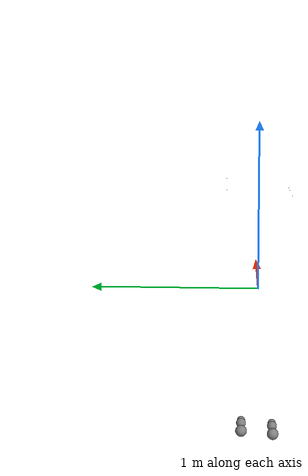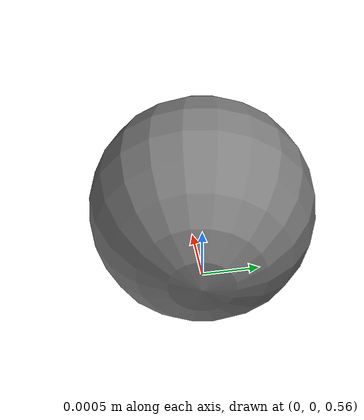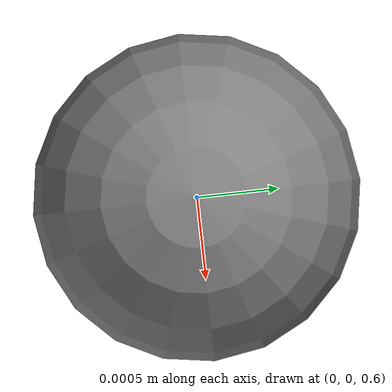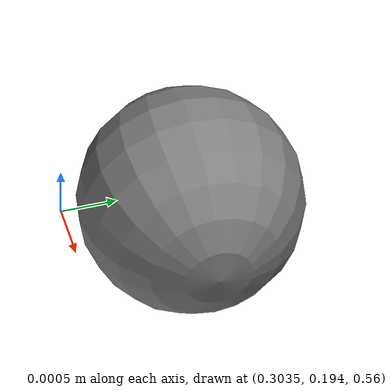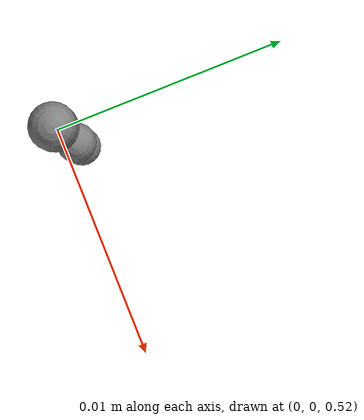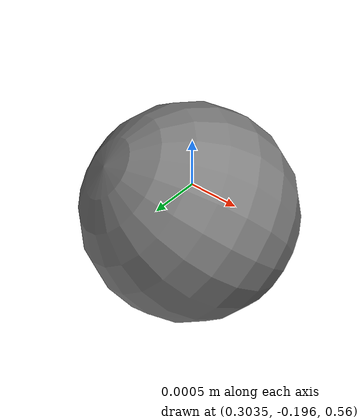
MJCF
<mujoco model="full_body_golf"><compiler angle="radian" autolimits="false" inertiafromgeom="false" /><option gravity="0 0 -9.8066499999999994" jacobian="dense" timestep="0.0005" integrator="Euler"><flag contact="disable" /></option><default><default class="contact"><geom contype="0" conaffinity="0" /></default></default><worldbody><body name="solid_reference:GolfSwing3D_Kinetic/Hips and Torso Inputs/LowerTorso" pos="0 0 0" quat="1 0 0 0"><joint name="TranslationInputX" type="slide" axis="1 0 0" limited="false" damping="0" armature="0" frictionloss="0" stiffness="0" /><joint name="TranslationInputY" type="slide" axis="0 1 0" limited="false" damping="0" armature="0" frictionloss="0" stiffness="0" /><joint name="TranslationInputZ" type="slide" axis="0 0 1" limited="false" damping="0" armature="0" frictionloss="0" stiffness="0" /><joint name="HipInputX" type="hinge" axis="1 0 0" limited="false" damping="0" armature="0" frictionloss="0" stiffness="0" /><joint name="HipInputY" type="hinge" axis="0 1 0" limited="false" damping="0" armature="0" frictionloss="0" stiffness="0" /><joint name="HipInputZ" type="hinge" axis="0 0 1" limited="false" damping="0" armature="0" frictionloss="0" stiffness="0" /><inertial mass="8.7126000000000001" pos="0 0 0.084498591022831707" fullinertia="0.050507629431820626 0.062922217455971347 0.057323142432643512 0 0 0" /><body name="solid_reference:GolfSwing3D_Kinetic/Hips and Torso Inputs/UpperTorsoBase" pos="0 0 0.13818248736358413" quat="1 0 0 0"><joint name="TorsoInput" type="hinge" axis="0 0 1" limited="false" damping="0" armature="0" frictionloss="0" stiffness="0" /><inertial mass="0.29999999999999999" pos="0 0 0" fullinertia="0.0001 0.0001 0.0001 0 0 0" /><body name="solid_reference:GolfSwing3D_Kinetic/Hips and Torso Inputs/COMRod" pos="0 0 0" quat="1 0 0 0"><joint name="SpineInputX" type="hinge" axis="1 0 0" limited="false" damping="0" armature="0" frictionloss="0" stiffness="0" /><joint name="SpineInputY" type="hinge" axis="0 1 0" limited="false" damping="0" armature="0" frictionloss="0" stiffness="0" /><inertial mass="25.186199999999999" pos="0 0 0.18387417036792422" fullinertia="0.40656629970473357 0.47683560872363417 0.22168280810530336 0 0 0" /><body name="GolfSwing3D_Kinetic/Head" pos="0 0 0.46261093595634689" quat="1 0 0 0"><joint name="NeckInputX" type="hinge" axis="1 0 0" limited="false" damping="0" armature="0" frictionloss="0" stiffness="0" /><joint name="NeckInputY" type="hinge" axis="0 1 0" limited="false" damping="0" armature="0" frictionloss="0" stiffness="0" /><joint name="NeckInputZ" type="hinge" axis="0 0 1" limited="false" damping="0" armature="0" frictionloss="0" stiffness="0" /><inertial mass="5.4132000000000007" pos="0 0 0.11933519345203904" fullinertia="0.030572073067708965 0.028287139896934158 0.020988664040769992 0 0 0" /><site name="native_frame_4" size=".001" pos="0 0 0" quat="1 0 0 0" /></body><body name="solid_reference:GolfSwing3D_Kinetic/HubtoLS" pos="0 0 0.42261093595634686" quat="1 0 0 0"><joint name="LScapInputX" type="hinge" axis="1 0 0" limited="false" damping="0" armature="0" frictionloss="0" stiffness="0" /><joint name="LScapInputY" type="hinge" axis="0 0 1" limited="false" damping="0" armature="0" frictionloss="0" stiffness="0" /><inertial mass="0.42276000000000002" pos="0 0.11251936800000001 0" fullinertia="0.0011625198379469871 0.0004010605883626344 0.0013049249435088514 0 0 0" /><body name="solid_reference:GolfSwing3D_Kinetic/LUpperArm" pos="0 0.19494 0" quat="-0.70710678118654746 0 0.70710678118654746 0"><joint name="LSInputX" type="hinge" axis="1 0 0" limited="false" damping="0" armature="0" frictionloss="0" stiffness="0" /><joint name="LSInputY" type="hinge" axis="0 1 0" limited="false" damping="0" armature="0" frictionloss="0" stiffness="0" /><joint name="LSInputZ" type="hinge" axis="0 0 1" limited="false" damping="0" armature="0" frictionloss="0" stiffness="0" /><inertial mass="2.1137999999999999" pos="0 0 -0.17567226217116602" fullinertia="0.014168445253400446 0.015904036230945547 0.0048880069002071374 0 0 0" /><body name="solid_reference:GolfSwing3D_Kinetic/Left Elbow Joint/Spherical Solid" pos="0 0 -0.30435249856404367" quat="1 0 0 0"><joint name="LEInput" type="hinge" axis="0 1 0" limited="false" damping="0" armature="0" frictionloss="0" stiffness="0" /><inertial mass="0.63179999999999992" pos="0 0 -0.066442656995979316" fullinertia="0.00093620947347771094 0.0010155456440247505 0.00019518751016286455 0 0 0" /><body name="solid_reference:GolfSwing3D_Kinetic/Left Forearm/LLowerForearm" pos="0 0 -0.14526160252728315" quat="1 0 0 0"><joint name="LFInput" type="hinge" axis="0 0 1" limited="false" damping="0" armature="0" frictionloss="0" stiffness="0" /><inertial mass="0.63179999999999992" pos="0 0 -0.066442656995979316" fullinertia="0.00093620947347771094 0.0010155456440247505 0.00019518751016286455 0 0 0" /><body name="solid_reference:GolfSwing3D_Kinetic/Club/Clubface Vector" pos="0 0 -0.14526160252728315" quat="-0.5 0.5 -0.5 0.49999999999999983"><joint name="LWInputX" type="hinge" axis="1 0 0" limited="false" damping="0" armature="0" frictionloss="0" stiffness="0" /><joint name="LWInputY" type="hinge" axis="0 0 1" limited="false" damping="0" armature="0" frictionloss="0" stiffness="0" /><inertial mass="1.4212715706945231" pos="0.051318554740303085 0.048003599218683093 0.21063066791819912" fullinertia="0.19983257314211267 0.20245555206949686 0.04064217278724018 -0.019546327151637736 -0.061299425378110603 -0.057277983611407721" /><site name="native_frame_13" size=".001" pos="5.5511151231257827e-17 5.5511151231257827e-17 2.2204460492503131e-16" quat="0.77344062203294228 0.49273601879763623 -0.21424771856219549 -0.33630155375740545" /><site name="native_frame_15" size=".001" pos="0.33057385393448363 0.30826510587657407 1.0294244564774084" quat="-0.19692096557759531 0.78470621787006856 0.30910399949920137 0.49991299487574609" /><site name="native_frame_16" size=".001" pos="-0.0050598428066759293 -0.0047183797507103775 0.045264830534310296" quat="-0.19692096557759531 0.78470621787006856 0.30910399949920137 0.49991299487574609" /><site name="native_closure_b" size=".001" pos="0.0067162358799786603 0.0062629912801391852 0.079795157220406643" quat="-0.19692096557759531 0.78470621787006856 0.30910399949920137 0.49991299487574609" /></body><site name="native_frame_8" size=".001" pos="0 0 0" quat="1 0 0 0" /></body><site name="native_frame_7" size=".001" pos="0 0 0" quat="1 0 0 0" /></body><site name="native_frame_6" size=".001" pos="0 0 0" quat="1 0 0 0" /></body><site name="native_frame_5" size=".001" pos="0 0 0" quat="1 0 0 0" /></body><body name="solid_reference:GolfSwing3D_Kinetic/HubtoRS" pos="0 0 0.42261093595634686" quat="1 0 0 0"><joint name="RScapInputX" type="hinge" axis="1 0 0" limited="false" damping="0" armature="0" frictionloss="0" stiffness="0" /><joint name="RScapInputY" type="hinge" axis="0 0 1" limited="false" damping="0" armature="0" frictionloss="0" stiffness="0" /><inertial mass="0.42276000000000002" pos="0 -0.11251936800000001 0" fullinertia="0.0011625198379469871 0.0004010605883626344 0.0013049249435088514 0 0 0" /><body name="solid_reference:GolfSwing3D_Kinetic/RUpperArm" pos="0 -0.19494 0" quat="-0.70710678118654746 0 0.70710678118654746 0"><joint name="RSInputX" type="hinge" axis="1 0 0" limited="false" damping="0" armature="0" frictionloss="0" stiffness="0" /><joint name="RSInputY" type="hinge" axis="0 1 0" limited="false" damping="0" armature="0" frictionloss="0" stiffness="0" /><joint name="RSInputZ" type="hinge" axis="0 0 1" limited="false" damping="0" armature="0" frictionloss="0" stiffness="0" /><inertial mass="2.1137999999999999" pos="0 0 -0.17567226217116602" fullinertia="0.014168445253400446 0.015904036230945547 0.0048880069002071374 0 0 0" /><body name="solid_reference:GolfSwing3D_Kinetic/Right Elbow Joint/Spherical Solid1" pos="0 0 -0.30435249856404367" quat="1 0 0 0"><joint name="REInput" type="hinge" axis="0 1 0" limited="false" damping="0" armature="0" frictionloss="0" stiffness="0" /><inertial mass="0.63179999999999992" pos="0 0 -0.066442656995979316" fullinertia="0.00093620947347771094 0.0010155456440247505 0.00019518751016286455 0 0 0" /><body name="solid_reference:GolfSwing3D_Kinetic/Right Forearm/RLowerForearm" pos="0 0 -0.14526160252728315" quat="1 0 0 0"><joint name="RFInput" type="hinge" axis="0 0 1" limited="false" damping="0" armature="0" frictionloss="0" stiffness="0" /><inertial mass="0.63179999999999992" pos="0 0 -0.066442656995979316" fullinertia="0.00093620947347771094 0.0010155456440247505 0.00019518751016286455 0 0 0" /><body name="solid_reference:GolfSwing3D_Kinetic/Grip/RHandStandoff" pos="0 0 -0.14526160252728315" quat="-0.5 0.5 -0.5 0.49999999999999983"><joint name="RWInputX" type="hinge" axis="1 0 0" limited="false" damping="0" armature="0" frictionloss="0" stiffness="0" /><joint name="RWInputY" type="hinge" axis="0 0 1" limited="false" damping="0" armature="0" frictionloss="0" stiffness="0" /><inertial mass="0.01" pos="-0.004987691911976279 -0.0042883556070835369 0.010863836135472661" fullinertia="9.2012744115933897e-07 9.2553333848932902e-07 8.4250588701799866e-07 -1.782416381427376e-08 4.5154556354944002e-08 3.8823327171659086e-08" /><site name="native_frame_14" size=".001" pos="0 0 0" quat="0.77080513573468701 0.2625273664132437 -0.058045652812244289 -0.57755478250877434" /><site name="native_closure_a" size=".001" pos="-0.0099753838239525581 -0.0085767112141670737 0.021727672270945322" quat="-0.14459040631591219 0.95343444167009039 0.13664863523273854 0.22667935575978804" /></body><site name="native_frame_12" size=".001" pos="0 0 0" quat="1 0 0 0" /></body><site name="native_frame_11" size=".001" pos="0 0 0" quat="1 0 0 0" /></body><site name="native_frame_10" size=".001" pos="0 0 0" quat="1 0 0 0" /></body><site name="native_frame_9" size=".001" pos="0 0 0" quat="1 0 0 0" /></body><site name="native_frame_2" size=".001" pos="0 0 0" quat="1 0 0 0" /><site name="native_frame_3" size=".001" pos="0 0 0.42261093595634686" quat="1 0 0 0" /></body><site name="native_frame_1" size=".001" pos="0 0 0" quat="1 0 0 0" /></body><body name="femur_r" pos="0 -0.088919999999999999 0" quat="-0.70710678118654746 0 0 0.70710678118654746"><joint name="hip_flexion_r" type="hinge" axis="1 0 0" limited="false" damping="0" armature="0" frictionloss="0" stiffness="0" /><joint name="hip_adduction_r" type="hinge" axis="0 1 0" limited="false" damping="0" armature="0" frictionloss="0" stiffness="0" /><joint name="hip_rotation_r" type="hinge" axis="0 0 1" limited="false" damping="0" armature="0" frictionloss="0" stiffness="0" /><inertial mass="9.8004040535195198" pos="0 0 -0.16878299999999999" fullinertia="0.146652 0.13907 0.0364552 0 0 0" /><body name="tibia_r" pos="-0.0027303100000000001 -0.0080320600000000006 -0.40503800000000001" quat="-0.68032563526635448 -0.045560293331000923 0.73026005249954595 0.042444615611223695"><joint name="knee_angle_r" type="hinge" axis="0 0 1" limited="false" damping="0" armature="0" frictionloss="0" stiffness="0" /><inertial mass="3.9064009749525499" pos="-0.19989858006544362 -0.016671920830007934 0.01267965535918876" fullinertia="0.0068385950131652886 0.062544461365063905 0.063143643621770815 -0.007089257657203028 0.0040432054640277748 0.00050647371483151593" /><body name="talus_r" pos="-0.43008149190201472 -0.055850692968447455 0.029215632328256986" quat="-0.040983721135049729 0.65786519257030707 0.74121418846569442 -0.12702460322118414"><joint name="ankle_angle_r" type="hinge" axis="0 0 1" limited="false" damping="0" armature="0" frictionloss="0" stiffness="0" /><inertial mass="0.105364827375659" pos="0 0 0" fullinertia="0.0010802922078896457 0.00097359418212649242 0.00097474760998386147 -1.9921450752889781e-06 -1.1272976720589852e-05 2.1040297294393086e-07" /><body name="calcn_r" pos="-0.04308488941984643 -0.039082936777608254 0.01990208254801442" quat="0.55868557777432515 -0.24427213651161361 0.77038627510012303 0.18629690187541481"><joint name="subtalar_angle_r" type="hinge" axis="0 0 1" limited="false" damping="0" armature="0" frictionloss="0" stiffness="0" /><inertial mass="1.3170603421957301" pos="-0.013764685373467197 -0.030284559116326056 0.089490521562114109" fullinertia="0.003480528488629786 0.0028078001469351316 0.0022797013644350805 -0.00018271295269065615 0.00024062245680185368 0.0009470790215192538" /><body name="toes_r" pos="-0.025706922560188177 -0.098359633696163254 0.12622681616473569" quat="-0.12401516161188221 0.36838566190219008 -0.29395810993341609 0.87321295993568349"><joint name="mtp_angle_r" type="hinge" axis="0 0 1" limited="false" damping="0" armature="0" frictionloss="0" stiffness="0" /><inertial mass="0.228220216095677" pos="0.015089824105375448 -0.0059999523335454163 0.032839829199068818" fullinertia="0.00013372263590437545 0.00018391499999999996 0.00015834436409562451 -4.3423034421580179e-27 -3.5825279726319822e-05 3.6261960545473405e-26" /></body><geom class="contact" name="contact_heel_r" type="sphere" size="0.035000000000000003" pos="-0.0015186443400354993 -0.0099594174084870219 0.0048480639694628378" /><site name="contact_site_heel_r" pos="-0.0015186443400354993 -0.0099594174084870219 0.0048480639694628378" size=".005" /><geom class="contact" name="contact_forefoot_r" type="sphere" size="0.029999999999999999" pos="-0.02429836674700447 -0.099619366419140598 0.12292506338284748" /><site name="contact_site_forefoot_r" pos="-0.02429836674700447 -0.099619366419140598 0.12292506338284748" size=".005" /><geom class="contact" name="contact_toe_r" type="sphere" size="0.025000000000000001" pos="-0.034928900049827558 -0.14544276343188905 0.17500392711766419" /><site name="contact_site_toe_r" pos="-0.034928900049827558 -0.14544276343188905 0.17500392711766419" size=".005" /></body></body></body></body><body name="femur_l" pos="0 0.088919999999999999 0" quat="-0.70710678118654746 0 0 0.70710678118654746"><joint name="hip_flexion_l" type="hinge" axis="1 0 0" limited="false" damping="0" armature="0" frictionloss="0" stiffness="0" /><joint name="hip_adduction_l" type="hinge" axis="0 1 0" limited="false" damping="0" armature="0" frictionloss="0" stiffness="0" /><joint name="hip_rotation_l" type="hinge" axis="0 0 1" limited="false" damping="0" armature="0" frictionloss="0" stiffness="0" /><inertial mass="9.8004040535195198" pos="0 0 -0.16385" fullinertia="0.13820499999999999 0.13106000000000001 0.034355499999999997 0 0 0" /><body name="tibia_l" pos="0.00265051 -0.0077973199999999999 -0.39320100000000002" quat="-0.042444615611223695 0.73026005249954595 -0.045560293331000923 0.68032563526635448"><joint name="knee_angle_l" type="hinge" axis="0 0 1" limited="false" damping="0" armature="0" frictionloss="0" stiffness="0" /><inertial mass="3.9064009749525499" pos="-0.1979963214437368 0.016455200902117176 0.012547883302980851" fullinertia="0.0067862608895295981 0.061394755191849899 0.061982133918620508 0.006949603546877744 0.0039635567491348393 -0.00049649648738851694" /><body name="talus_l" pos="-0.42597139945707868 0.055330700770591698 0.028925891954734956" quat="-0.65786519257030707 0.040983721135049729 -0.12702460322118414 0.74121418846569442"><joint name="ankle_angle_l" type="hinge" axis="0 0 1" limited="false" damping="0" armature="0" frictionloss="0" stiffness="0" /><inertial mass="0.105364827375659" pos="0 0 0" fullinertia="0.0010774155998482104 0.00096232210777847098 0.00096356629237331806 -2.1488957437085246e-06 1.215998372522486e-05 -2.2695839707219404e-07" /><body name="calcn_l" pos="-0.042582517535629041 -0.039095979897126279 -0.019828275234819167" quat="-0.55868557777432515 -0.24427213651161361 0.77038627510012303 -0.18629690187541481"><joint name="subtalar_angle_l" type="hinge" axis="0 0 1" limited="false" damping="0" armature="0" frictionloss="0" stiffness="0" /><inertial mass="1.3170603421957301" pos="-0.013606639659407645 -0.029662498390090136 -0.088671303340184041" fullinertia="0.0034167520151407904 0.0027645081281228914 0.0022524898567363168 -0.00017714937677705715 -0.00023329554710432206 -0.00091824063893714762" /><body name="toes_l" pos="-0.025421485193895966 -0.097247514337216318 -0.1247622188945349" quat="-0.12401301979453323 -0.36838638292558912 0.29395942803439168 0.87321251621019225"><joint name="mtp_angle_l" type="hinge" axis="0 0 1" limited="false" damping="0" armature="0" frictionloss="0" stiffness="0" /><inertial mass="0.228220216095677" pos="0.014823642457330278 -0.0060000475435511248 -0.032592916299594321" fullinertia="0.00013249083765106228 0.00018081099999999993 0.00015619416234893769 -3.2356687906490853e-26 3.4488977830848687e-05 8.4461464115552122e-26" /></body><geom class="contact" name="contact_heel_l" type="sphere" size="0.035000000000000003" pos="-0.0015186443400354993 -0.0099594174084870219 -0.0048480639694628378" /><site name="contact_site_heel_l" pos="-0.0015186443400354993 -0.0099594174084870219 -0.0048480639694628378" size=".005" /><geom class="contact" name="contact_forefoot_l" type="sphere" size="0.029999999999999999" pos="-0.02429836674700447 -0.099619366419140598 -0.12292506338284748" /><site name="contact_site_forefoot_l" pos="-0.02429836674700447 -0.099619366419140598 -0.12292506338284748" size=".005" /><geom class="contact" name="contact_toe_l" type="sphere" size="0.025000000000000001" pos="-0.034928900049827558 -0.14544276343188905 -0.17500392711766419" /><site name="contact_site_toe_l" pos="-0.034928900049827558 -0.14544276343188905 -0.17500392711766419" size=".005" /></body></body></body></body><site name="native_frame_0" size=".001" pos="0 0 0" quat="1 0 0 0" /></body></worldbody><equality><weld name="native_grip" site1="native_closure_a" site2="native_closure_b" solref="0.002 1" solimp="0.99 0.999 0.001" /></equality></mujoco>
